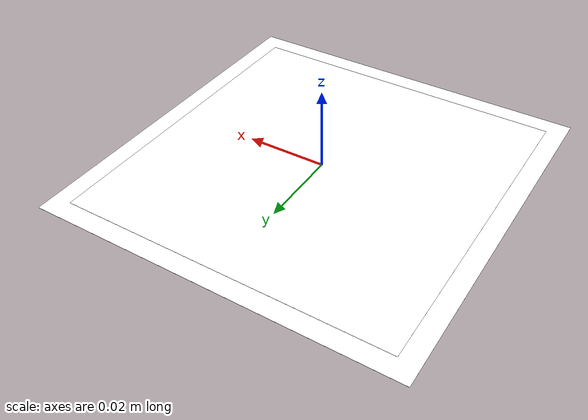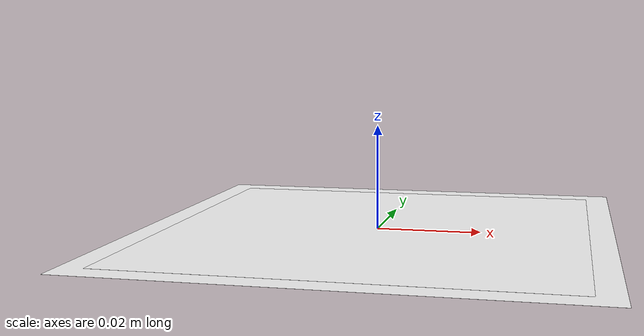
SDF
<?xml version='1.0'?>
<sdf version='1.5'>
  <model name='aruco_marker_4x4_1000-13'>

    <link name='marker'>
      <pose frame=''>0 0 1e-5 0 0 0</pose>
      <visual name='visual'>
        <geometry>
          <box>
            <size>0.0806 0.0806 1e-5</size>
          </box>
        </geometry>
        <material>
          <script>
            <uri>model://aruco_marker_4x4_1000-13/materials/scripts</uri>
            <uri>model://aruco_marker_4x4_1000-13/materials/textures</uri>
            <name>ArucoMarker4x4_1000_13/Marker</name>
          </script>
          <ambient>1 1 1 1</ambient>
          <diffuse>1 1 1 1</diffuse>
          <specular>0 0 0 1</specular>
          <emissive>1 1 1 0</emissive>
          <shader type='vertex'>
            <normal_map>__default__</normal_map>
          </shader>
        </material>
        <pose frame=''>0 0 0 0 -0 0</pose>
        <cast_shadows>1</cast_shadows>
        <transparency>0</transparency>
      </visual>
      <collision name='collision'>
        <laser_retro>0</laser_retro>
        <max_contacts>10</max_contacts>
        <pose frame=''>0 0 0 0 -0 0</pose>
        <geometry>
          <box>
            <size>0.0806 0.0806 1e-05</size>
          </box>
        </geometry>
      </collision>
    </link>

    <link name='marker_pad'>
      <pose frame='marker'>0 0 -1e-5 0 -0 0</pose>
      <visual name='visual'>
        <geometry>
          <box>
            <size>0.09 0.09 1e-5</size>
          </box>
        </geometry>
        <material>
          <lighting>1</lighting>
          <ambient>1 1 1 1</ambient>
            <diffuse>1 1 1 1</diffuse>
            <specular>.1 .1 .1 128</specular>
            <emissive>1 1 1 1</emissive>
          <shader type='vertex'>
            <normal_map>__default__</normal_map>
          </shader>
        </material>
        <cast_shadows>1</cast_shadows>
        <transparency>0</transparency>
      </visual>
      <collision name='collision'>
        <laser_retro>0</laser_retro>
        <max_contacts>10</max_contacts>
        <pose frame=''>0 0 0 0 -0 0</pose>
        <geometry>
          <box>
            <size>0.09 0.09 1e-5</size>
          </box>
        </geometry>
      </collision>
    </link>

  <joint name='marker_JOINT_marker_pad' type='revolute'>
      <parent>marker</parent>
      <child>marker_pad</child>
      <pose frame=''>0 0 0 0 -0 0</pose>
      <axis>
        <xyz>0 0 1</xyz>
        <limit>
          <upper>0</upper>
          <lower>0</lower>
        </limit>
      </axis>
    </joint>

    <static>1</static>
    <allow_auto_disable>1</allow_auto_disable>

  </model>
</sdf>
